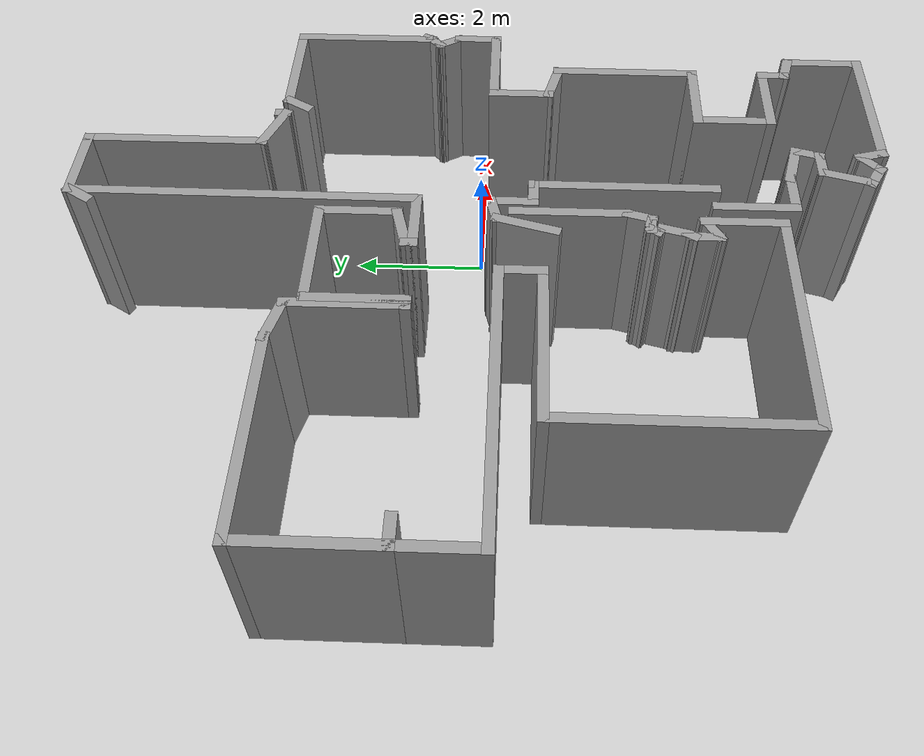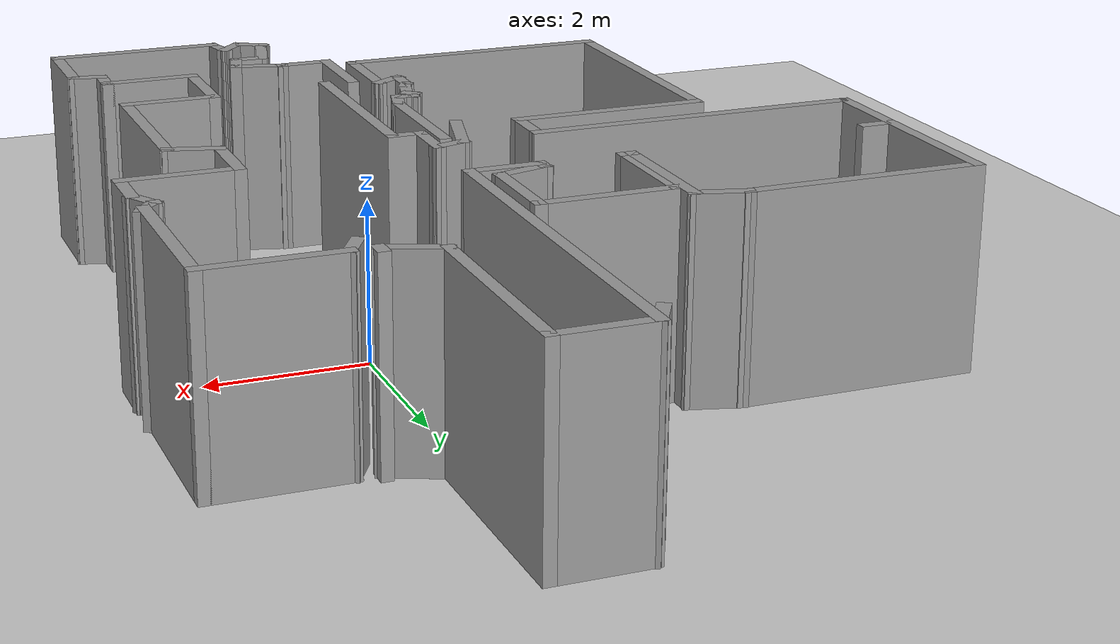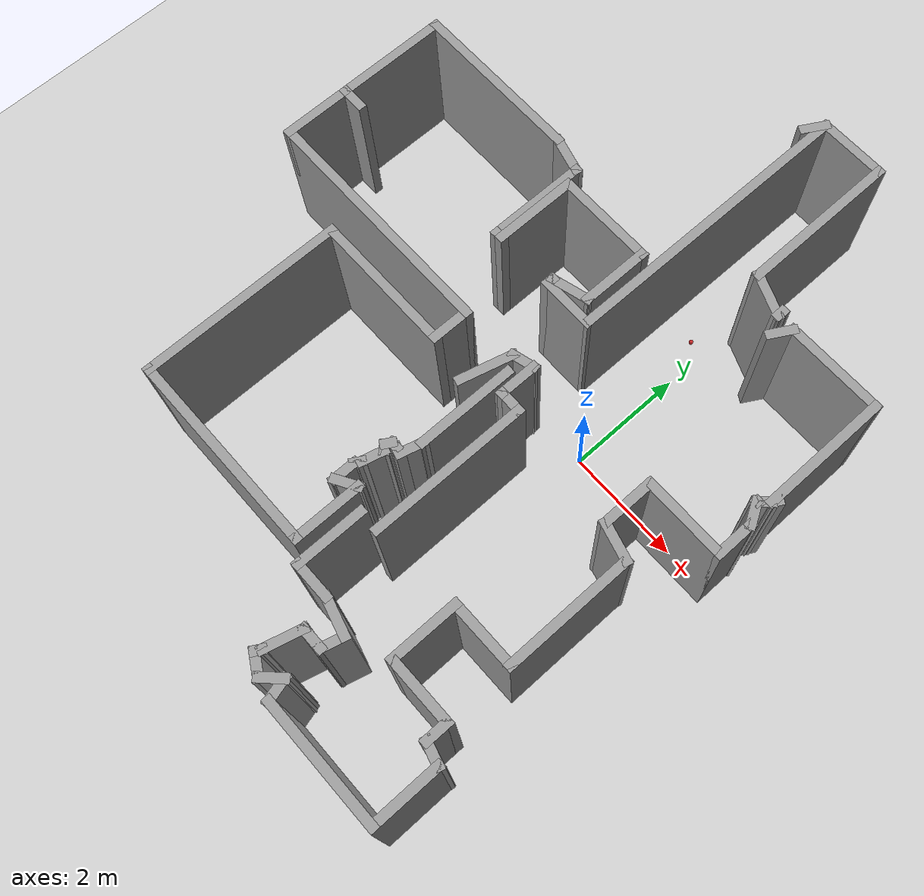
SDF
<sdf version="1.6">
 <world name="default">
  <light name="sun" type="directional">
   <pose>0 0 10 0 -0 0</pose>
   <diffuse>0.8 0.8 0.8 1</diffuse>
   <specular>0.2 0.2 0.2 1</specular>
   <attenuation>
    <range>1000</range>
    <constant>0.9</constant>
    <linear>0.01</linear>
    <quadratic>0.001</quadratic>
   </attenuation>
   <direction>-0.5 0.1 -0.9</direction>
  </light>
  <model name="ground_plane">
   <static>1</static>
   <link name="link">
    <collision name="collision">
     <geometry><plane><normal>0 0 1</normal><size>100 100</size></plane></geometry>
     <surface><friction><ode><mu>100</mu><mu2>50</mu2></ode></friction></surface>
    </collision>
    <visual name="visual">
     <cast_shadows>0</cast_shadows>
     <geometry><plane><normal>0 0 1</normal><size>100 100</size></plane></geometry>
     <material>
      <script><uri>file://media/materials/scripts/gazebo.material</uri><name>Gazebo/Grey</name></script>
     </material>
    </visual>
   </link>
  </model>
  <gravity>0 0 -9.8</gravity>
  <magnetic_field>6e-06 2.3e-05 -4.2e-05</magnetic_field>
  <atmosphere type="adiabatic"/>
  <physics name="default_physics" default="0" type="ode">
   <max_step_size>0.001</max_step_size>
   <real_time_factor>1</real_time_factor>
   <real_time_update_rate>1000</real_time_update_rate>
  </physics>
  <scene><ambient>0.4 0.4 0.4 1</ambient><background>0.7 0.7 0.7 1</background><shadows>1</shadows></scene>
  <spherical_coordinates>
   <surface_model>EARTH_WGS84</surface_model>
   <latitude_deg>0</latitude_deg>
   <longitude_deg>0</longitude_deg>
   <elevation>0</elevation>
   <heading_deg>0</heading_deg>
  </spherical_coordinates>
  <model name="Untitled">
   <pose>-1.73618 -0.002212 0 0 -0 0</pose>
   <link name="Wall_11">
    <collision name="Wall_11_Collision">
     <geometry><box><size>1 0.15 2.5</size></box></geometry>
     <pose>0 0 1.25 0 -0 0</pose>
    </collision>
    <visual name="Wall_11_Visual">
     <pose>0 0 1.25 0 -0 0</pose>
     <geometry><box><size>1 0.15 2.5</size></box></geometry>
     <material>
      <script><uri>file://media/materials/scripts/gazebo.material</uri><name>Gazebo/Grey</name></script>
      <ambient>1 1 1 1</ambient>
     </material>
     <meta><layer>0</layer></meta>
    </visual>
    <pose>0.399139 0.885621 0 0 -0 3.14159</pose>
   </link>
   <link name="Wall_12">
    <collision name="Wall_12_Collision">
     <geometry><box><size>0.25 0.15 2.5</size></box></geometry>
     <pose>0 0 1.25 0 -0 0</pose>
    </collision>
    <visual name="Wall_12_Visual">
     <pose>0 0 1.25 0 -0 0</pose>
     <geometry><box><size>0.25 0.15 2.5</size></box></geometry>
     <material>
      <script><uri>file://media/materials/scripts/gazebo.material</uri><name>Gazebo/Grey</name></script>
      <ambient>1 1 1 1</ambient>
     </material>
     <meta><layer>0</layer></meta>
    </visual>
    <pose>-0.025861 0.935621 0 0 -0 1.5708</pose>
   </link>
   <link name="Wall_13">
    <collision name="Wall_13_Collision">
     <geometry><box><size>0.75 0.15 2.5</size></box></geometry>
     <pose>0 0 1.25 0 -0 0</pose>
    </collision>
    <visual name="Wall_13_Visual">
     <pose>0 0 1.25 0 -0 0</pose>
     <geometry><box><size>0.75 0.15 2.5</size></box></geometry>
     <material>
      <script><uri>file://media/materials/scripts/gazebo.material</uri><name>Gazebo/Grey</name></script>
      <ambient>1 1 1 1</ambient>
     </material>
     <meta><layer>0</layer></meta>
    </visual>
    <pose>0.263917 1.06327 0 0 -0 0.261799</pose>
   </link>
   <link name="Wall_14">
    <collision name="Wall_14_Collision">
     <geometry><box><size>1.25 0.15 2.5</size></box></geometry>
     <pose>0 0 1.25 0 -0 0</pose>
    </collision>
    <visual name="Wall_14_Visual">
     <pose>0 0 1.25 0 -0 0</pose>
     <geometry><box><size>1.25 0.15 2.5</size></box></geometry>
     <material>
      <script><uri>file://media/materials/scripts/gazebo.material</uri><name>Gazebo/Grey</name></script>
      <ambient>1 1 1 1</ambient>
     </material>
     <meta><layer>0</layer></meta>
    </visual>
    <pose>0.553695 1.69091 0 0 -0 1.5708</pose>
   </link>
   <link name="Wall_15">
    <collision name="Wall_15_Collision">
     <geometry><box><size>1.75 0.15 2.5</size></box></geometry>
     <pose>0 0 1.25 0 -0 0</pose>
    </collision>
    <visual name="Wall_15_Visual">
     <pose>0 0 1.25 0 -0 0</pose>
     <geometry><box><size>1.75 0.15 2.5</size></box></geometry>
     <material>
      <script><uri>file://media/materials/scripts/gazebo.material</uri><name>Gazebo/Grey</name></script>
      <ambient>1 1 1 1</ambient>
     </material>
     <meta><layer>0</layer></meta>
    </visual>
    <pose>-0.246305 2.24091 0 0 -0 3.14159</pose>
   </link>
   <link name="Wall_16">
    <collision name="Wall_16_Collision">
     <geometry><box><size>1.5 0.15 2.5</size></box></geometry>
     <pose>0 0 1.25 0 -0 0</pose>
    </collision>
    <visual name="Wall_16_Visual">
     <pose>0 0 1.25 0 -0 0</pose>
     <geometry><box><size>1.5 0.15 2.5</size></box></geometry>
     <material>
      <script><uri>file://media/materials/scripts/gazebo.material</uri><name>Gazebo/Grey</name></script>
      <ambient>1 1 1 1</ambient>
     </material>
     <meta><layer>0</layer></meta>
    </visual>
    <pose>-1.04631 1.56591 0 0 -0 -1.5708</pose>
   </link>
   <link name="Wall_17">
    <collision name="Wall_17_Collision">
     <geometry><box><size>0.25 0.15 2.5</size></box></geometry>
     <pose>0 0 1.25 0 -0 0</pose>
    </collision>
    <visual name="Wall_17_Visual">
     <pose>0 0 1.25 0 -0 0</pose>
     <geometry><box><size>0.25 0.15 2.5</size></box></geometry>
     <material>
      <script><uri>file://media/materials/scripts/gazebo.material</uri><name>Gazebo/Grey</name></script>
      <ambient>1 1 1 1</ambient>
     </material>
     <meta><layer>0</layer></meta>
    </visual>
    <pose>-1.09631 0.890912 0 0 -0 3.14159</pose>
   </link>
   <link name="Wall_18">
    <collision name="Wall_18_Collision">
     <geometry><box><size>1.75 0.15 2.5</size></box></geometry>
     <pose>0 0 1.25 0 -0 0</pose>
    </collision>
    <visual name="Wall_18_Visual">
     <pose>0 0 1.25 0 -0 0</pose>
     <geometry><box><size>1.75 0.15 2.5</size></box></geometry>
     <material>
      <script><uri>file://media/materials/scripts/gazebo.material</uri><name>Gazebo/Grey</name></script>
      <ambient>1 1 1 1</ambient>
     </material>
     <meta><layer>0</layer></meta>
    </visual>
    <pose>-1.1463 1.69091 0 0 -0 1.5708</pose>
   </link>
   <link name="Wall_19">
    <collision name="Wall_19_Collision">
     <geometry><box><size>0.75 0.15 2.5</size></box></geometry>
     <pose>0 0 1.25 0 -0 0</pose>
    </collision>
    <visual name="Wall_19_Visual">
     <pose>0 0 1.25 0 -0 0</pose>
     <geometry><box><size>0.75 0.15 2.5</size></box></geometry>
     <material>
      <script><uri>file://media/materials/scripts/gazebo.material</uri><name>Gazebo/Grey</name></script>
      <ambient>1 1 1 1</ambient>
     </material>
     <meta><layer>0</layer></meta>
    </visual>
    <pose>-1.43608 2.56856 0 0 -0 2.87979</pose>
   </link>
   <link name="Wall_2">
    <collision name="Wall_2_Collision">
     <geometry><box><size>1.25 0.15 2.5</size></box></geometry>
     <pose>0 0 1.25 0 -0 0</pose>
    </collision>
    <visual name="Wall_2_Visual">
     <pose>0 0 1.25 0 -0 0</pose>
     <geometry><box><size>1.25 0.15 2.5</size></box></geometry>
     <material>
      <script><uri>file://media/materials/scripts/gazebo.material</uri><name>Gazebo/Grey</name></script>
      <ambient>1 1 1 1</ambient>
     </material>
     <meta><layer>0</layer></meta>
    </visual>
    <pose>1.39515 5.87075 0 0 -0 3.14159</pose>
   </link>
   <link name="Wall_20">
    <collision name="Wall_20_Collision">
     <geometry><box><size>3 0.15 2.5</size></box></geometry>
     <pose>0 0 1.25 0 -0 0</pose>
    </collision>
    <visual name="Wall_20_Visual">
     <pose>0 0 1.25 0 -0 0</pose>
     <geometry><box><size>3 0.15 2.5</size></box></geometry>
     <material>
      <script><uri>file://media/materials/scripts/gazebo.material</uri><name>Gazebo/Grey</name></script>
      <ambient>1 1 1 1</ambient>
     </material>
     <meta><layer>0</layer></meta>
    </visual>
    <pose>-3.15086 2.6462 0 0 -0 3.14159</pose>
   </link>
   <link name="Wall_21">
    <collision name="Wall_21_Collision">
     <geometry><box><size>2 0.15 2.5</size></box></geometry>
     <pose>0 0 1.25 0 -0 0</pose>
    </collision>
    <visual name="Wall_21_Visual">
     <pose>0 0 1.25 0 -0 0</pose>
     <geometry><box><size>2 0.15 2.5</size></box></geometry>
     <material>
      <script><uri>file://media/materials/scripts/gazebo.material</uri><name>Gazebo/Grey</name></script>
      <ambient>1 1 1 1</ambient>
     </material>
     <meta><layer>0</layer></meta>
    </visual>
    <pose>-4.57586 1.7212 0 0 -0 -1.5708</pose>
   </link>
   <link name="Wall_22">
    <collision name="Wall_22_Collision">
     <geometry><box><size>0.5 0.15 2.5</size></box></geometry>
     <pose>0 0 1.25 0 -0 0</pose>
    </collision>
    <visual name="Wall_22_Visual">
     <pose>0 0 1.25 0 -0 0</pose>
     <geometry><box><size>0.5 0.15 2.5</size></box></geometry>
     <material>
      <script><uri>file://media/materials/scripts/gazebo.material</uri><name>Gazebo/Grey</name></script>
      <ambient>1 1 1 1</ambient>
     </material>
     <meta><layer>0</layer></meta>
    </visual>
    <pose>-4.40086 0.796204 0 0 -0 0</pose>
   </link>
   <link name="Wall_24">
    <collision name="Wall_24_Collision">
     <geometry><box><size>1.25 0.15 2.5</size></box></geometry>
     <pose>0 0 1.25 0 -0 0</pose>
    </collision>
    <visual name="Wall_24_Visual">
     <pose>0 0 1.25 0 -0 0</pose>
     <geometry><box><size>1.25 0.15 2.5</size></box></geometry>
     <material>
      <script><uri>file://media/materials/scripts/gazebo.material</uri><name>Gazebo/Grey</name></script>
      <ambient>1 1 1 1</ambient>
     </material>
     <meta><layer>0</layer></meta>
    </visual>
    <pose>-4.57586 0.246204 0 0 -0 -1.5708</pose>
   </link>
   <link name="Wall_25">
    <collision name="Wall_25_Collision">
     <geometry><box><size>4.25 0.15 2.5</size></box></geometry>
     <pose>0 0 1.25 0 -0 0</pose>
    </collision>
    <visual name="Wall_25_Visual">
     <pose>0 0 1.25 0 -0 0</pose>
     <geometry><box><size>4.25 0.15 2.5</size></box></geometry>
     <material>
      <script><uri>file://media/materials/scripts/gazebo.material</uri><name>Gazebo/Grey</name></script>
      <ambient>1 1 1 1</ambient>
     </material>
     <meta><layer>0</layer></meta>
    </visual>
    <pose>-2.52586 -0.303796 0 0 -0 0</pose>
   </link>
   <link name="Wall_26">
    <collision name="Wall_26_Collision">
     <geometry><box><size>0.75 0.15 2.5</size></box></geometry>
     <pose>0 0 1.25 0 -0 0</pose>
    </collision>
    <visual name="Wall_26_Visual">
     <pose>0 0 1.25 0 -0 0</pose>
     <geometry><box><size>0.75 0.15 2.5</size></box></geometry>
     <material>
      <script><uri>file://media/materials/scripts/gazebo.material</uri><name>Gazebo/Grey</name></script>
      <ambient>1 1 1 1</ambient>
     </material>
     <meta><layer>0</layer></meta>
    </visual>
    <pose>-0.475861 -0.603796 0 0 -0 -1.5708</pose>
   </link>
   <link name="Wall_27">
    <collision name="Wall_27_Collision">
     <geometry><box><size>2.5 0.15 2.5</size></box></geometry>
     <pose>0 0 1.25 0 -0 0</pose>
    </collision>
    <visual name="Wall_27_Visual">
     <pose>0 0 1.25 0 -0 0</pose>
     <geometry><box><size>2.5 0.15 2.5</size></box></geometry>
     <material>
      <script><uri>file://media/materials/scripts/gazebo.material</uri><name>Gazebo/Grey</name></script>
      <ambient>1 1 1 1</ambient>
     </material>
     <meta><layer>0</layer></meta>
    </visual>
    <pose>-1.65086 -0.903796 0 0 -0 3.14159</pose>
   </link>
   <link name="Wall_29">
    <collision name="Wall_29_Collision">
     <geometry><box><size>3.5 0.15 2.5</size></box></geometry>
     <pose>0 0 1.25 0 -0 0</pose>
    </collision>
    <visual name="Wall_29_Visual">
     <pose>0 0 1.25 0 -0 0</pose>
     <geometry><box><size>3.5 0.15 2.5</size></box></geometry>
     <material>
      <script><uri>file://media/materials/scripts/gazebo.material</uri><name>Gazebo/Grey</name></script>
      <ambient>1 1 1 1</ambient>
     </material>
     <meta><layer>0</layer></meta>
    </visual>
    <pose>-2.82586 -2.5788 0 0 -0 -1.5708</pose>
   </link>
   <link name="Wall_3">
    <collision name="Wall_3_Collision">
     <geometry><box><size>0.5 0.15 2.5</size></box></geometry>
     <pose>0 0 1.25 0 -0 0</pose>
    </collision>
    <visual name="Wall_3_Visual">
     <pose>0 0 1.25 0 -0 0</pose>
     <geometry><box><size>0.5 0.15 2.5</size></box></geometry>
     <material>
      <script><uri>file://media/materials/scripts/gazebo.material</uri><name>Gazebo/Grey</name></script>
      <ambient>1 1 1 1</ambient>
     </material>
     <meta><layer>0</layer></meta>
    </visual>
    <pose>0.757655 5.71919 0 0 -0 -2.0944</pose>
   </link>
   <link name="Wall_30">
    <collision name="Wall_30_Collision">
     <geometry><box><size>3.5 0.15 2.5</size></box></geometry>
     <pose>0 0 1.25 0 -0 0</pose>
    </collision>
    <visual name="Wall_30_Visual">
     <pose>0 0 1.25 0 -0 0</pose>
     <geometry><box><size>3.5 0.15 2.5</size></box></geometry>
     <material>
      <script><uri>file://media/materials/scripts/gazebo.material</uri><name>Gazebo/Grey</name></script>
      <ambient>1 1 1 1</ambient>
     </material>
     <meta><layer>0</layer></meta>
    </visual>
    <pose>-1.15086 -4.2538 0 0 -0 0</pose>
   </link>
   <link name="Wall_31">
    <collision name="Wall_31_Collision">
     <geometry><box><size>1.25 0.15 2.5</size></box></geometry>
     <pose>0 0 1.25 0 -0 0</pose>
    </collision>
    <visual name="Wall_31_Visual">
     <pose>0 0 1.25 0 -0 0</pose>
     <geometry><box><size>1.25 0.15 2.5</size></box></geometry>
     <material>
      <script><uri>file://media/materials/scripts/gazebo.material</uri><name>Gazebo/Grey</name></script>
      <ambient>1 1 1 1</ambient>
     </material>
     <meta><layer>0</layer></meta>
    </visual>
    <pose>0.524139 -3.7038 0 0 -0 1.5708</pose>
   </link>
   <link name="Wall_33">
    <collision name="Wall_33_Collision">
     <geometry><box><size>0.5 0.15 2.5</size></box></geometry>
     <pose>0 0 1.25 0 -0 0</pose>
    </collision>
    <visual name="Wall_33_Visual">
     <pose>0 0 1.25 0 -0 0</pose>
     <geometry><box><size>0.5 0.15 2.5</size></box></geometry>
     <material>
      <script><uri>file://media/materials/scripts/gazebo.material</uri><name>Gazebo/Grey</name></script>
      <ambient>1 1 1 1</ambient>
     </material>
     <meta><layer>0</layer></meta>
    </visual>
    <pose>0.372585 -3.2413 0 0 -0 -2.61799</pose>
   </link>
   <link name="Wall_34">
    <collision name="Wall_34_Collision">
     <geometry><box><size>0.5 0.15 2.5</size></box></geometry>
     <pose>0 0 1.25 0 -0 0</pose>
    </collision>
    <visual name="Wall_34_Visual">
     <pose>0 0 1.25 0 -0 0</pose>
     <geometry><box><size>0.5 0.15 2.5</size></box></geometry>
     <material>
      <script><uri>file://media/materials/scripts/gazebo.material</uri><name>Gazebo/Grey</name></script>
      <ambient>1 1 1 1</ambient>
     </material>
     <meta><layer>0</layer></meta>
    </visual>
    <pose>0.221031 -3.1538 0 0 -0 1.5708</pose>
   </link>
   <link name="Wall_35">
    <collision name="Wall_35_Collision">
     <geometry><box><size>0.25 0.15 2.5</size></box></geometry>
     <pose>0 0 1.25 0 -0 0</pose>
    </collision>
    <visual name="Wall_35_Visual">
     <pose>0 0 1.25 0 -0 0</pose>
     <geometry><box><size>0.25 0.15 2.5</size></box></geometry>
     <material>
      <script><uri>file://media/materials/scripts/gazebo.material</uri><name>Gazebo/Grey</name></script>
      <ambient>1 1 1 1</ambient>
     </material>
     <meta><layer>0</layer></meta>
    </visual>
    <pose>0.24603 -2.93549 0 0 -0 1.0472</pose>
   </link>
   <link name="Wall_36">
    <collision name="Wall_36_Collision">
     <geometry><box><size>0.5 0.15 2.5</size></box></geometry>
     <pose>0 0 1.25 0 -0 0</pose>
    </collision>
    <visual name="Wall_36_Visual">
     <pose>0 0 1.25 0 -0 0</pose>
     <geometry><box><size>0.5 0.15 2.5</size></box></geometry>
     <material>
      <script><uri>file://media/materials/scripts/gazebo.material</uri><name>Gazebo/Grey</name></script>
      <ambient>1 1 1 1</ambient>
     </material>
     <meta><layer>0</layer></meta>
    </visual>
    <pose>0.316324 -2.72316 0 0 -0 1.309</pose>
   </link>
   <link name="Wall_37">
    <collision name="Wall_37_Collision">
     <geometry><box><size>0.25 0.15 2.5</size></box></geometry>
     <pose>0 0 1.25 0 -0 0</pose>
    </collision>
    <visual name="Wall_37_Visual">
     <pose>0 0 1.25 0 -0 0</pose>
     <geometry><box><size>0.25 0.15 2.5</size></box></geometry>
     <material>
      <script><uri>file://media/materials/scripts/gazebo.material</uri><name>Gazebo/Grey</name></script>
      <ambient>1 1 1 1</ambient>
     </material>
     <meta><layer>0</layer></meta>
    </visual>
    <pose>0.326262 -2.51876 0 0 -0 2.35619</pose>
   </link>
   <link name="Wall_38">
    <collision name="Wall_38_Collision">
     <geometry><box><size>0.25 0.15 2.5</size></box></geometry>
     <pose>0 0 1.25 0 -0 0</pose>
    </collision>
    <visual name="Wall_38_Visual">
     <pose>0 0 1.25 0 -0 0</pose>
     <geometry><box><size>0.25 0.15 2.5</size></box></geometry>
     <material>
      <script><uri>file://media/materials/scripts/gazebo.material</uri><name>Gazebo/Grey</name></script>
      <ambient>1 1 1 1</ambient>
     </material>
     <meta><layer>0</layer></meta>
    </visual>
    <pose>0.315906 -2.44011 0 0 -0 1.0472</pose>
   </link>
   <link name="Wall_39">
    <collision name="Wall_39_Collision">
     <geometry><box><size>0.25 0.15 2.5</size></box></geometry>
     <pose>0 0 1.25 0 -0 0</pose>
    </collision>
    <visual name="Wall_39_Visual">
     <pose>0 0 1.25 0 -0 0</pose>
     <geometry><box><size>0.25 0.15 2.5</size></box></geometry>
     <material>
      <script><uri>file://media/materials/scripts/gazebo.material</uri><name>Gazebo/Grey</name></script>
      <ambient>1 1 1 1</ambient>
     </material>
     <meta><layer>0</layer></meta>
    </visual>
    <pose>0.390906 -2.39681 0 0 -0 0</pose>
   </link>
   <link name="Wall_40">
    <collision name="Wall_40_Collision">
     <geometry><box><size>0.25 0.15 2.5</size></box></geometry>
     <pose>0 0 1.25 0 -0 0</pose>
    </collision>
    <visual name="Wall_40_Visual">
     <pose>0 0 1.25 0 -0 0</pose>
     <geometry><box><size>0.25 0.15 2.5</size></box></geometry>
     <material>
      <script><uri>file://media/materials/scripts/gazebo.material</uri><name>Gazebo/Grey</name></script>
      <ambient>1 1 1 1</ambient>
     </material>
     <meta><layer>0</layer></meta>
    </visual>
    <pose>0.489203 -2.40975 0 0 -0 -0.261799</pose>
   </link>
   <link name="Wall_41">
    <collision name="Wall_41_Collision">
     <geometry><box><size>0.5 0.15 2.5</size></box></geometry>
     <pose>0 0 1.25 0 -0 0</pose>
    </collision>
    <visual name="Wall_41_Visual">
     <pose>0 0 1.25 0 -0 0</pose>
     <geometry><box><size>0.5 0.15 2.5</size></box></geometry>
     <material>
      <script><uri>file://media/materials/scripts/gazebo.material</uri><name>Gazebo/Grey</name></script>
      <ambient>1 1 1 1</ambient>
     </material>
     <meta><layer>0</layer></meta>
    </visual>
    <pose>0.582792 -2.25365 0 0 -0 1.309</pose>
   </link>
   <link name="Wall_43">
    <collision name="Wall_43_Collision">
     <geometry><box><size>1.75 0.15 2.5</size></box></geometry>
     <pose>0 0 1.25 0 -0 0</pose>
    </collision>
    <visual name="Wall_43_Visual">
     <pose>0 0 1.25 0 -0 0</pose>
     <geometry><box><size>1.75 0.15 2.5</size></box></geometry>
     <material>
      <script><uri>file://media/materials/scripts/gazebo.material</uri><name>Gazebo/Grey</name></script>
      <ambient>1 1 1 1</ambient>
     </material>
     <meta><layer>0</layer></meta>
    </visual>
    <pose>0.628086 -1.28461 0 0 -0 1.5708</pose>
   </link>
   <link name="Wall_45">
    <collision name="Wall_45_Collision">
     <geometry><box><size>1 0.15 2.5</size></box></geometry>
     <pose>0 0 1.25 0 -0 0</pose>
    </collision>
    <visual name="Wall_45_Visual">
     <pose>0 0 1.25 0 -0 0</pose>
     <geometry><box><size>1 0.15 2.5</size></box></geometry>
     <material>
      <script><uri>file://media/materials/scripts/gazebo.material</uri><name>Gazebo/Grey</name></script>
      <ambient>1 1 1 1</ambient>
     </material>
     <meta><layer>0</layer></meta>
    </visual>
    <pose>0.371292 -0.663022 0 0 -0 1.309</pose>
   </link>
   <link name="Wall_47">
    <collision name="Wall_47_Collision">
     <geometry><box><size>0.5 0.15 2.5</size></box></geometry>
     <pose>0 0 1.25 0 -0 0</pose>
    </collision>
    <visual name="Wall_47_Visual">
     <pose>0 0 1.25 0 -0 0</pose>
     <geometry><box><size>0.5 0.15 2.5</size></box></geometry>
     <material>
      <script><uri>file://media/materials/scripts/gazebo.material</uri><name>Gazebo/Grey</name></script>
      <ambient>1 1 1 1</ambient>
     </material>
     <meta><layer>0</layer></meta>
    </visual>
    <pose>0.650327 -0.20721 0 0 -0 0.261799</pose>
   </link>
   <link name="Wall_48">
    <collision name="Wall_48_Collision">
     <geometry><box><size>0.75 0.15 2.5</size></box></geometry>
     <pose>0 0 1.25 0 -0 0</pose>
    </collision>
    <visual name="Wall_48_Visual">
     <pose>0 0 1.25 0 -0 0</pose>
     <geometry><box><size>0.75 0.15 2.5</size></box></geometry>
     <material>
      <script><uri>file://media/materials/scripts/gazebo.material</uri><name>Gazebo/Grey</name></script>
      <ambient>1 1 1 1</ambient>
     </material>
     <meta><layer>0</layer></meta>
    </visual>
    <pose>0.819364 -0.461917 0 0 -0 -1.5708</pose>
   </link>
   <link name="Wall_49">
    <collision name="Wall_49_Collision">
     <geometry><box><size>0.5 0.15 2.5</size></box></geometry>
     <pose>0 0 1.25 0 -0 0</pose>
    </collision>
    <visual name="Wall_49_Visual">
     <pose>0 0 1.25 0 -0 0</pose>
     <geometry><box><size>0.5 0.15 2.5</size></box></geometry>
     <material>
      <script><uri>file://media/materials/scripts/gazebo.material</uri><name>Gazebo/Grey</name></script>
      <ambient>1 1 1 1</ambient>
     </material>
     <meta><layer>0</layer></meta>
    </visual>
    <pose>0.994364 -0.761917 0 0 -0 0</pose>
   </link>
   <link name="Wall_52">
    <collision name="Wall_52_Collision">
     <geometry><box><size>2.75 0.15 2.5</size></box></geometry>
     <pose>0 0 1.25 0 -0 0</pose>
    </collision>
    <visual name="Wall_52_Visual">
     <pose>0 0 1.25 0 -0 0</pose>
     <geometry><box><size>2.75 0.15 2.5</size></box></geometry>
     <material>
      <script><uri>file://media/materials/scripts/gazebo.material</uri><name>Gazebo/Grey</name></script>
      <ambient>1 1 1 1</ambient>
     </material>
     <meta><layer>0</layer></meta>
    </visual>
    <pose>1.16936 -2.06192 0 0 -0 -1.5708</pose>
   </link>
   <link name="Wall_54">
    <collision name="Wall_54_Collision">
     <geometry><box><size>1.25 0.15 2.5</size></box></geometry>
     <pose>0 0 1.25 0 -0 0</pose>
    </collision>
    <visual name="Wall_54_Visual">
     <pose>0 0 1.25 0 -0 0</pose>
     <geometry><box><size>1.25 0.15 2.5</size></box></geometry>
     <material>
      <script><uri>file://media/materials/scripts/gazebo.material</uri><name>Gazebo/Grey</name></script>
      <ambient>1 1 1 1</ambient>
     </material>
     <meta><layer>0</layer></meta>
    </visual>
    <pose>0.824757 -3.90623 0 0 -0 -1.5708</pose>
   </link>
   <link name="Wall_55">
    <collision name="Wall_55_Collision">
     <geometry><box><size>0.75 0.15 2.5</size></box></geometry>
     <pose>0 0 1.25 0 -0 0</pose>
    </collision>
    <visual name="Wall_55_Visual">
     <pose>0 0 1.25 0 -0 0</pose>
     <geometry><box><size>0.75 0.15 2.5</size></box></geometry>
     <material>
      <script><uri>file://media/materials/scripts/gazebo.material</uri><name>Gazebo/Grey</name></script>
      <ambient>1 1 1 1</ambient>
     </material>
     <meta><layer>0</layer></meta>
    </visual>
    <pose>1.12476 -4.45623 0 0 -0 0</pose>
   </link>
   <link name="Wall_56">
    <collision name="Wall_56_Collision">
     <geometry><box><size>0.75 0.15 2.5</size></box></geometry>
     <pose>0 0 1.25 0 -0 0</pose>
    </collision>
    <visual name="Wall_56_Visual">
     <pose>0 0 1.25 0 -0 0</pose>
     <geometry><box><size>0.75 0.15 2.5</size></box></geometry>
     <material>
      <script><uri>file://media/materials/scripts/gazebo.material</uri><name>Gazebo/Grey</name></script>
      <ambient>1 1 1 1</ambient>
     </material>
     <meta><layer>0</layer></meta>
    </visual>
    <pose>1.71453 -4.53388 0 0 -0 -0.261799</pose>
   </link>
   <link name="Wall_58">
    <collision name="Wall_58_Collision">
     <geometry><box><size>0.5 0.15 2.5</size></box></geometry>
     <pose>0 0 1.25 0 -0 0</pose>
    </collision>
    <visual name="Wall_58_Visual">
     <pose>0 0 1.25 0 -0 0</pose>
     <geometry><box><size>0.5 0.15 2.5</size></box></geometry>
     <material>
      <script><uri>file://media/materials/scripts/gazebo.material</uri><name>Gazebo/Grey</name></script>
      <ambient>1 1 1 1</ambient>
     </material>
     <meta><layer>0</layer></meta>
    </visual>
    <pose>1.95902 -4.78056 0 0 -0 -1.8326</pose>
   </link>
   <link name="Wall_59">
    <collision name="Wall_59_Collision">
     <geometry><box><size>0.5 0.15 2.5</size></box></geometry>
     <pose>0 0 1.25 0 -0 0</pose>
    </collision>
    <visual name="Wall_59_Visual">
     <pose>0 0 1.25 0 -0 0</pose>
     <geometry><box><size>0.5 0.15 2.5</size></box></geometry>
     <material>
      <script><uri>file://media/materials/scripts/gazebo.material</uri><name>Gazebo/Grey</name></script>
      <ambient>1 1 1 1</ambient>
     </material>
     <meta><layer>0</layer></meta>
    </visual>
    <pose>1.73873 -4.9496 0 0 -0 3.14159</pose>
   </link>
   <link name="Wall_60">
    <collision name="Wall_60_Collision">
     <geometry><box><size>0.75 0.15 2.5</size></box></geometry>
     <pose>0 0 1.25 0 -0 0</pose>
    </collision>
    <visual name="Wall_60_Visual">
     <pose>0 0 1.25 0 -0 0</pose>
     <geometry><box><size>0.75 0.15 2.5</size></box></geometry>
     <material>
      <script><uri>file://media/materials/scripts/gazebo.material</uri><name>Gazebo/Grey</name></script>
      <ambient>1 1 1 1</ambient>
     </material>
     <meta><layer>0</layer></meta>
    </visual>
    <pose>1.48608 -5.23938 0 0 -0 -1.8326</pose>
   </link>
   <link name="Wall_61">
    <collision name="Wall_61_Collision">
     <geometry><box><size>0.25 0.15 2.5</size></box></geometry>
     <pose>0 0 1.25 0 -0 0</pose>
    </collision>
    <visual name="Wall_61_Visual">
     <pose>0 0 1.25 0 -0 0</pose>
     <geometry><box><size>0.25 0.15 2.5</size></box></geometry>
     <material>
      <script><uri>file://media/materials/scripts/gazebo.material</uri><name>Gazebo/Grey</name></script>
      <ambient>1 1 1 1</ambient>
     </material>
     <meta><layer>0</layer></meta>
    </visual>
    <pose>1.38343 -5.57246 0 0 -0 -2.0944</pose>
   </link>
   <link name="Wall_62">
    <collision name="Wall_62_Collision">
     <geometry><box><size>0.5 0.15 2.5</size></box></geometry>
     <pose>0 0 1.25 0 -0 0</pose>
    </collision>
    <visual name="Wall_62_Visual">
     <pose>0 0 1.25 0 -0 0</pose>
     <geometry><box><size>0.5 0.15 2.5</size></box></geometry>
     <material>
      <script><uri>file://media/materials/scripts/gazebo.material</uri><name>Gazebo/Grey</name></script>
      <ambient>1 1 1 1</ambient>
     </material>
     <meta><layer>0</layer></meta>
    </visual>
    <pose>1.50999 -5.70326 0 0 -0 -0.523599</pose>
   </link>
   <link name="Wall_63">
    <collision name="Wall_63_Collision">
     <geometry><box><size>0.5 0.15 2.5</size></box></geometry>
     <pose>0 0 1.25 0 -0 0</pose>
    </collision>
    <visual name="Wall_63_Visual">
     <pose>0 0 1.25 0 -0 0</pose>
     <geometry><box><size>0.5 0.15 2.5</size></box></geometry>
     <material>
      <script><uri>file://media/materials/scripts/gazebo.material</uri><name>Gazebo/Grey</name></script>
      <ambient>1 1 1 1</ambient>
     </material>
     <meta><layer>0</layer></meta>
    </visual>
    <pose>1.78529 -5.66701 0 0 -0 0.785398</pose>
   </link>
   <link name="Wall_64">
    <collision name="Wall_64_Collision">
     <geometry><box><size>0.5 0.15 2.5</size></box></geometry>
     <pose>0 0 1.25 0 -0 0</pose>
    </collision>
    <visual name="Wall_64_Visual">
     <pose>0 0 1.25 0 -0 0</pose>
     <geometry><box><size>0.5 0.15 2.5</size></box></geometry>
     <material>
      <script><uri>file://media/materials/scripts/gazebo.material</uri><name>Gazebo/Grey</name></script>
      <ambient>1 1 1 1</ambient>
     </material>
     <meta><layer>0</layer></meta>
    </visual>
    <pose>1.95432 -5.71231 0 0 -0 -1.309</pose>
   </link>
   <link name="Wall_65">
    <collision name="Wall_65_Collision">
     <geometry><box><size>2.25 0.15 2.5</size></box></geometry>
     <pose>0 0 1.25 0 -0 0</pose>
    </collision>
    <visual name="Wall_65_Visual">
     <pose>0 0 1.25 0 -0 0</pose>
     <geometry><box><size>2.25 0.15 2.5</size></box></geometry>
     <material>
      <script><uri>file://media/materials/scripts/gazebo.material</uri><name>Gazebo/Grey</name></script>
      <ambient>1 1 1 1</ambient>
     </material>
     <meta><layer>0</layer></meta>
    </visual>
    <pose>3.04962 -5.88134 0 0 -0 0</pose>
   </link>
   <link name="Wall_66">
    <collision name="Wall_66_Collision">
     <geometry><box><size>1.25 0.15 2.5</size></box></geometry>
     <pose>0 0 1.25 0 -0 0</pose>
    </collision>
    <visual name="Wall_66_Visual">
     <pose>0 0 1.25 0 -0 0</pose>
     <geometry><box><size>1.25 0.15 2.5</size></box></geometry>
     <material>
      <script><uri>file://media/materials/scripts/gazebo.material</uri><name>Gazebo/Grey</name></script>
      <ambient>1 1 1 1</ambient>
     </material>
     <meta><layer>0</layer></meta>
    </visual>
    <pose>4.09962 -5.33134 0 0 -0 1.5708</pose>
   </link>
   <link name="Wall_67">
    <collision name="Wall_67_Collision">
     <geometry><box><size>0.5 0.15 2.5</size></box></geometry>
     <pose>0 0 1.25 0 -0 0</pose>
    </collision>
    <visual name="Wall_67_Visual">
     <pose>0 0 1.25 0 -0 0</pose>
     <geometry><box><size>0.5 0.15 2.5</size></box></geometry>
     <material>
      <script><uri>file://media/materials/scripts/gazebo.material</uri><name>Gazebo/Grey</name></script>
      <ambient>1 1 1 1</ambient>
     </material>
     <meta><layer>0</layer></meta>
    </visual>
    <pose>3.93058 -4.73605 0 0 -0 2.87979</pose>
   </link>
   <link name="Wall_68">
    <collision name="Wall_68_Collision">
     <geometry><box><size>0.5 0.15 2.5</size></box></geometry>
     <pose>0 0 1.25 0 -0 0</pose>
    </collision>
    <visual name="Wall_68_Visual">
     <pose>0 0 1.25 0 -0 0</pose>
     <geometry><box><size>0.5 0.15 2.5</size></box></geometry>
     <material>
      <script><uri>file://media/materials/scripts/gazebo.material</uri><name>Gazebo/Grey</name></script>
      <ambient>1 1 1 1</ambient>
     </material>
     <meta><layer>0</layer></meta>
    </visual>
    <pose>3.76154 -4.51576 0 0 -0 1.5708</pose>
   </link>
   <link name="Wall_69">
    <collision name="Wall_69_Collision">
     <geometry><box><size>1.25 0.15 2.5</size></box></geometry>
     <pose>0 0 1.25 0 -0 0</pose>
    </collision>
    <visual name="Wall_69_Visual">
     <pose>0 0 1.25 0 -0 0</pose>
     <geometry><box><size>1.25 0.15 2.5</size></box></geometry>
     <material>
      <script><uri>file://media/materials/scripts/gazebo.material</uri><name>Gazebo/Grey</name></script>
      <ambient>1 1 1 1</ambient>
     </material>
     <meta><layer>0</layer></meta>
    </visual>
    <pose>3.21154 -4.34076 0 0 -0 3.14159</pose>
   </link>
   <link name="Wall_71">
    <collision name="Wall_71_Collision">
     <geometry><box><size>1.25 0.15 2.5</size></box></geometry>
     <pose>0 0 1.25 0 -0 0</pose>
    </collision>
    <visual name="Wall_71_Visual">
     <pose>0 0 1.25 0 -0 0</pose>
     <geometry><box><size>1.25 0.15 2.5</size></box></geometry>
     <material>
      <script><uri>file://media/materials/scripts/gazebo.material</uri><name>Gazebo/Grey</name></script>
      <ambient>1 1 1 1</ambient>
     </material>
     <meta><layer>0</layer></meta>
    </visual>
    <pose>2.66154 -3.79076 0 0 -0 1.5708</pose>
   </link>
   <link name="Wall_72">
    <collision name="Wall_72_Collision">
     <geometry><box><size>1.25 0.15 2.5</size></box></geometry>
     <pose>0 0 1.25 0 -0 0</pose>
    </collision>
    <visual name="Wall_72_Visual">
     <pose>0 0 1.25 0 -0 0</pose>
     <geometry><box><size>1.25 0.15 2.5</size></box></geometry>
     <material>
      <script><uri>file://media/materials/scripts/gazebo.material</uri><name>Gazebo/Grey</name></script>
      <ambient>1 1 1 1</ambient>
     </material>
     <meta><layer>0</layer></meta>
    </visual>
    <pose>3.21154 -3.24076 0 0 -0 0</pose>
   </link>
   <link name="Wall_73">
    <collision name="Wall_73_Collision">
     <geometry><box><size>2.25 0.15 2.5</size></box></geometry>
     <pose>0 0 1.25 0 -0 0</pose>
    </collision>
    <visual name="Wall_73_Visual">
     <pose>0 0 1.25 0 -0 0</pose>
     <geometry><box><size>2.25 0.15 2.5</size></box></geometry>
     <material>
      <script><uri>file://media/materials/scripts/gazebo.material</uri><name>Gazebo/Grey</name></script>
      <ambient>1 1 1 1</ambient>
     </material>
     <meta><layer>0</layer></meta>
    </visual>
    <pose>3.76154 -2.19076 0 0 -0 1.5708</pose>
   </link>
   <link name="Wall_75">
    <collision name="Wall_75_Collision">
     <geometry><box><size>0.75 0.15 2.5</size></box></geometry>
     <pose>0 0 1.25 0 -0 0</pose>
    </collision>
    <visual name="Wall_75_Visual">
     <pose>0 0 1.25 0 -0 0</pose>
     <geometry><box><size>0.75 0.15 2.5</size></box></geometry>
     <material>
      <script><uri>file://media/materials/scripts/gazebo.material</uri><name>Gazebo/Grey</name></script>
      <ambient>1 1 1 1</ambient>
     </material>
     <meta><layer>0</layer></meta>
    </visual>
    <pose>3.47176 -1.06311 0 0 -0 2.87979</pose>
   </link>
   <link name="Wall_76">
    <collision name="Wall_76_Collision">
     <geometry><box><size>1 0.15 2.5</size></box></geometry>
     <pose>0 0 1.25 0 -0 0</pose>
    </collision>
    <visual name="Wall_76_Visual">
     <pose>0 0 1.25 0 -0 0</pose>
     <geometry><box><size>1 0.15 2.5</size></box></geometry>
     <material>
      <script><uri>file://media/materials/scripts/gazebo.material</uri><name>Gazebo/Grey</name></script>
      <ambient>1 1 1 1</ambient>
     </material>
     <meta><layer>0</layer></meta>
    </visual>
    <pose>3.18199 -0.560466 0 0 -0 1.5708</pose>
   </link>
   <link name="Wall_77">
    <collision name="Wall_77_Collision">
     <geometry><box><size>1.5 0.15 2.5</size></box></geometry>
     <pose>0 0 1.25 0 -0 0</pose>
    </collision>
    <visual name="Wall_77_Visual">
     <pose>0 0 1.25 0 -0 0</pose>
     <geometry><box><size>1.5 0.15 2.5</size></box></geometry>
     <material>
      <script><uri>file://media/materials/scripts/gazebo.material</uri><name>Gazebo/Grey</name></script>
      <ambient>1 1 1 1</ambient>
     </material>
     <meta><layer>0</layer></meta>
    </visual>
    <pose>3.85699 -0.135466 0 0 -0 0</pose>
   </link>
   <link name="Wall_78">
    <collision name="Wall_78_Collision">
     <geometry><box><size>0.75 0.15 2.5</size></box></geometry>
     <pose>0 0 1.25 0 -0 0</pose>
    </collision>
    <visual name="Wall_78_Visual">
     <pose>0 0 1.25 0 -0 0</pose>
     <geometry><box><size>0.75 0.15 2.5</size></box></geometry>
     <material>
      <script><uri>file://media/materials/scripts/gazebo.material</uri><name>Gazebo/Grey</name></script>
      <ambient>1 1 1 1</ambient>
     </material>
     <meta><layer>0</layer></meta>
    </visual>
    <pose>4.53199 0.164534 0 0 -0 1.5708</pose>
   </link>
   <link name="Wall_79">
    <collision name="Wall_79_Collision">
     <geometry><box><size>0.15 0.15 2.5</size></box></geometry>
     <pose>0 0 1.25 0 -0 0</pose>
    </collision>
    <visual name="Wall_79_Visual">
     <pose>0 0 1.25 0 -0 0</pose>
     <geometry><box><size>0.15 0.15 2.5</size></box></geometry>
     <material>
      <script><uri>file://media/materials/scripts/gazebo.material</uri><name>Gazebo/Grey</name></script>
      <ambient>1 1 1 1</ambient>
     </material>
     <meta><layer>0</layer></meta>
    </visual>
    <pose>4.53199 0.464534 0 0 -0 0</pose>
   </link>
   <link name="Wall_8">
    <collision name="Wall_8_Collision">
     <geometry><box><size>5.13517 0.15 2.5</size></box></geometry>
     <pose>0 0 1.25 0 -0 0</pose>
    </collision>
    <visual name="Wall_8_Visual">
     <pose>0 0 1.25 0 -0 0</pose>
     <geometry><box><size>5.13517 0.15 2.5</size></box></geometry>
     <material>
      <script><uri>file://media/materials/scripts/gazebo.material</uri><name>Gazebo/Grey</name></script>
      <ambient>1 1 1 1</ambient>
     </material>
     <meta><layer>0</layer></meta>
    </visual>
    <pose>0.834647 3.37819 0 0 -0 1.56658</pose>
   </link>
   <link name="Wall_80">
    <collision name="Wall_80_Collision">
     <geometry><box><size>0.5 0.15 2.5</size></box></geometry>
     <pose>0 0 1.25 0 -0 0</pose>
    </collision>
    <visual name="Wall_80_Visual">
     <pose>0 0 1.25 0 -0 0</pose>
     <geometry><box><size>0.5 0.15 2.5</size></box></geometry>
     <material>
      <script><uri>file://media/materials/scripts/gazebo.material</uri><name>Gazebo/Grey</name></script>
      <ambient>1 1 1 1</ambient>
     </material>
     <meta><layer>0</layer></meta>
    </visual>
    <pose>4.44449 0.616088 0 0 -0 2.0944</pose>
   </link>
   <link name="Wall_81">
    <collision name="Wall_81_Collision">
     <geometry><box><size>0.15 0.15 2.5</size></box></geometry>
     <pose>0 0 1.25 0 -0 0</pose>
    </collision>
    <visual name="Wall_81_Visual">
     <pose>0 0 1.25 0 -0 0</pose>
     <geometry><box><size>0.15 0.15 2.5</size></box></geometry>
     <material>
      <script><uri>file://media/materials/scripts/gazebo.material</uri><name>Gazebo/Grey</name></script>
      <ambient>1 1 1 1</ambient>
     </material>
     <meta><layer>0</layer></meta>
    </visual>
    <pose>4.35699 0.767643 0 0 -0 0</pose>
   </link>
   <link name="Wall_82">
    <collision name="Wall_82_Collision">
     <geometry><box><size>0.25 0.15 2.5</size></box></geometry>
     <pose>0 0 1.25 0 -0 0</pose>
    </collision>
    <visual name="Wall_82_Visual">
     <pose>0 0 1.25 0 -0 0</pose>
     <geometry><box><size>0.25 0.15 2.5</size></box></geometry>
     <material>
      <script><uri>file://media/materials/scripts/gazebo.material</uri><name>Gazebo/Grey</name></script>
      <ambient>1 1 1 1</ambient>
     </material>
     <meta><layer>0</layer></meta>
    </visual>
    <pose>4.39234 0.802998 0 0 -0 0.785398</pose>
   </link>
   <link name="Wall_83">
    <collision name="Wall_83_Collision">
     <geometry><box><size>0.25 0.15 2.5</size></box></geometry>
     <pose>0 0 1.25 0 -0 0</pose>
    </collision>
    <visual name="Wall_83_Visual">
     <pose>0 0 1.25 0 -0 0</pose>
     <geometry><box><size>0.25 0.15 2.5</size></box></geometry>
     <material>
      <script><uri>file://media/materials/scripts/gazebo.material</uri><name>Gazebo/Grey</name></script>
      <ambient>1 1 1 1</ambient>
     </material>
     <meta><layer>0</layer></meta>
    </visual>
    <pose>4.46305 0.873709 0 0 -0 0.785398</pose>
   </link>
   <link name="Wall_84">
    <collision name="Wall_84_Collision">
     <geometry><box><size>0.25 0.15 2.5</size></box></geometry>
     <pose>0 0 1.25 0 -0 0</pose>
    </collision>
    <visual name="Wall_84_Visual">
     <pose>0 0 1.25 0 -0 0</pose>
     <geometry><box><size>0.25 0.15 2.5</size></box></geometry>
     <material>
      <script><uri>file://media/materials/scripts/gazebo.material</uri><name>Gazebo/Grey</name></script>
      <ambient>1 1 1 1</ambient>
     </material>
     <meta><layer>0</layer></meta>
    </visual>
    <pose>4.52341 0.952365 0 0 -0 1.0472</pose>
   </link>
   <link name="Wall_86">
    <collision name="Wall_86_Collision">
     <geometry><box><size>2.25 0.15 2.5</size></box></geometry>
     <pose>0 0 1.25 0 -0 0</pose>
    </collision>
    <visual name="Wall_86_Visual">
     <pose>0 0 1.25 0 -0 0</pose>
     <geometry><box><size>2.25 0.15 2.5</size></box></geometry>
     <material>
      <script><uri>file://media/materials/scripts/gazebo.material</uri><name>Gazebo/Grey</name></script>
      <ambient>1 1 1 1</ambient>
     </material>
     <meta><layer>0</layer></meta>
    </visual>
    <pose>4.49841 1.95906 0 0 -0 1.5708</pose>
   </link>
   <link name="Wall_87">
    <collision name="Wall_87_Collision">
     <geometry><box><size>1.75 0.15 2.5</size></box></geometry>
     <pose>0 0 1.25 0 -0 0</pose>
    </collision>
    <visual name="Wall_87_Visual">
     <pose>0 0 1.25 0 -0 0</pose>
     <geometry><box><size>1.75 0.15 2.5</size></box></geometry>
     <material>
      <script><uri>file://media/materials/scripts/gazebo.material</uri><name>Gazebo/Grey</name></script>
      <ambient>1 1 1 1</ambient>
     </material>
     <meta><layer>0</layer></meta>
    </visual>
    <pose>3.69841 3.00906 0 0 -0 3.14159</pose>
   </link>
   <link name="Wall_88">
    <collision name="Wall_88_Collision">
     <geometry><box><size>0.5 0.15 2.5</size></box></geometry>
     <pose>0 0 1.25 0 -0 0</pose>
    </collision>
    <visual name="Wall_88_Visual">
     <pose>0 0 1.25 0 -0 0</pose>
     <geometry><box><size>0.5 0.15 2.5</size></box></geometry>
     <material>
      <script><uri>file://media/materials/scripts/gazebo.material</uri><name>Gazebo/Grey</name></script>
      <ambient>1 1 1 1</ambient>
     </material>
     <meta><layer>0</layer></meta>
    </visual>
    <pose>2.81091 2.85751 0 0 -0 -2.0944</pose>
   </link>
   <link name="Wall_90">
    <collision name="Wall_90_Collision">
     <geometry><box><size>0.25 0.15 2.5</size></box></geometry>
     <pose>0 0 1.25 0 -0 0</pose>
    </collision>
    <visual name="Wall_90_Visual">
     <pose>0 0 1.25 0 -0 0</pose>
     <geometry><box><size>0.25 0.15 2.5</size></box></geometry>
     <material>
      <script><uri>file://media/materials/scripts/gazebo.material</uri><name>Gazebo/Grey</name></script>
      <ambient>1 1 1 1</ambient>
     </material>
     <meta><layer>0</layer></meta>
    </visual>
    <pose>2.59481 3.0588 0 0 -0 1.5708</pose>
   </link>
   <link name="Wall_93">
    <collision name="Wall_93_Collision">
     <geometry><box><size>2.75 0.15 2.5</size></box></geometry>
     <pose>0 0 1.25 0 -0 0</pose>
    </collision>
    <visual name="Wall_93_Visual">
     <pose>0 0 1.25 0 -0 0</pose>
     <geometry><box><size>2.75 0.15 2.5</size></box></geometry>
     <material>
      <script><uri>file://media/materials/scripts/gazebo.material</uri><name>Gazebo/Grey</name></script>
      <ambient>1 1 1 1</ambient>
     </material>
     <meta><layer>0</layer></meta>
    </visual>
    <pose>1.94515 4.57075 0 0 -0 -1.5708</pose>
   </link>
   <link name="Wall_94">
    <collision name="Wall_94_Collision">
     <geometry><box><size>0.850475 0.15 2.5</size></box></geometry>
     <pose>0 0 1.25 0 -0 0</pose>
    </collision>
    <visual name="Wall_94_Visual">
     <pose>0 0 1.25 0 -0 0</pose>
     <geometry><box><size>0.850475 0.15 2.5</size></box></geometry>
     <material>
      <script><uri>file://media/materials/scripts/gazebo.material</uri><name>Gazebo/Grey</name></script>
      <ambient>1 1 1 1</ambient>
     </material>
     <meta><layer>0</layer></meta>
    </visual>
    <pose>2.26998 3.13978 0 0 -0 -0.383268</pose>
   </link>
   <static>1</static>
  </model>
  <model name="cricket_ball">
   <link name="link">
    <pose>0 0 0.0375 0 -0 0</pose>
    <inertial>
     <mass>0.1467</mass>
     <inertia>
      <ixx>8.25187e-05</ixx>
      <ixy>0</ixy>
      <ixz>0</ixz>
      <iyy>8.25187e-05</iyy>
      <iyz>0</iyz>
      <izz>8.25187e-05</izz>
     </inertia>
    </inertial>
    <collision name="collision">
     <geometry><sphere><radius>0.0375</radius></sphere></geometry>
     <surface>
      <contact>
       <poissons_ratio>0.347</poissons_ratio>
       <elastic_modulus>8.8e+09</elastic_modulus>
       <ode><kp>100000</kp><kd>100</kd><max_vel>100</max_vel><min_depth>0.001</min_depth></ode>
      </contact>
      <friction>
       <torsional>
        <coefficient>1</coefficient>
        <use_patch_radius>0</use_patch_radius>
        <surface_radius>0.01</surface_radius>
       </torsional>
      </friction>
     </surface>
    </collision>
    <visual name="visual">
     <geometry><sphere><radius>0.0375</radius></sphere></geometry>
     <material>
      <script><uri>file://media/materials/scripts/gazebo.material</uri><name>Gazebo/Red</name></script>
     </material>
    </visual>
    <velocity_decay><linear>0</linear><angular>0.005</angular></velocity_decay>
   </link>
   <pose>-0.275925 2.75589 -0.001014 0 -0 0</pose>
  </model>
 </world>
</sdf>
